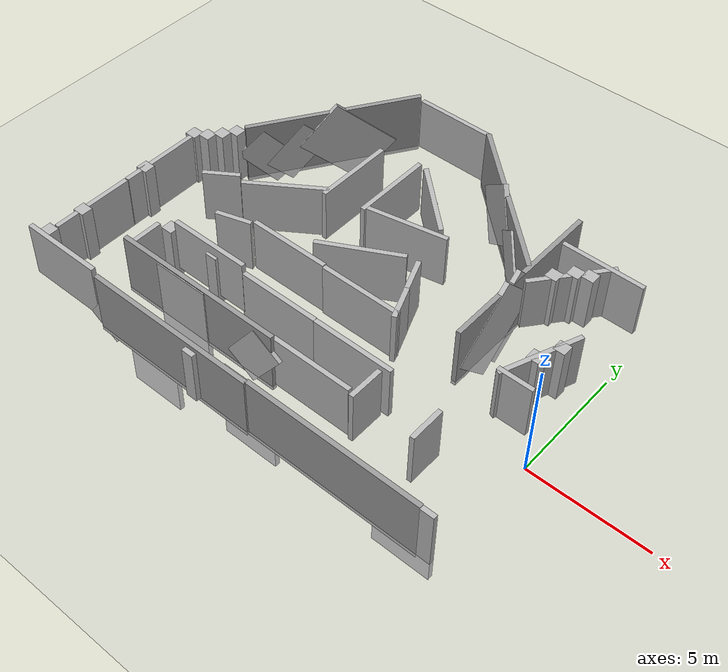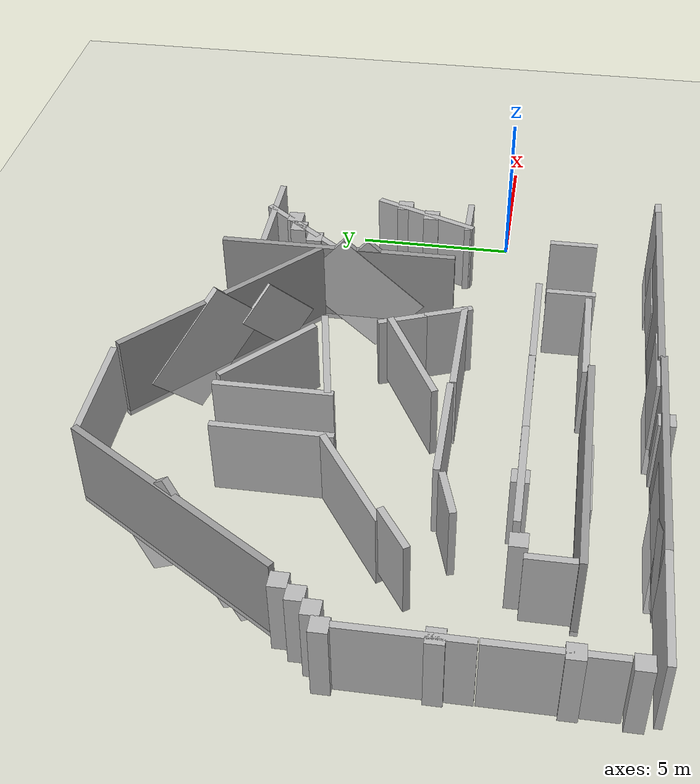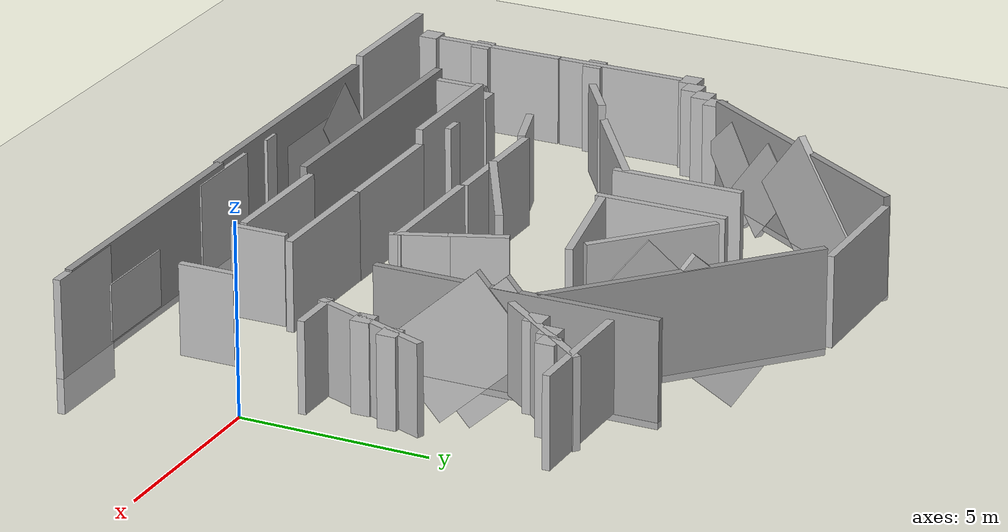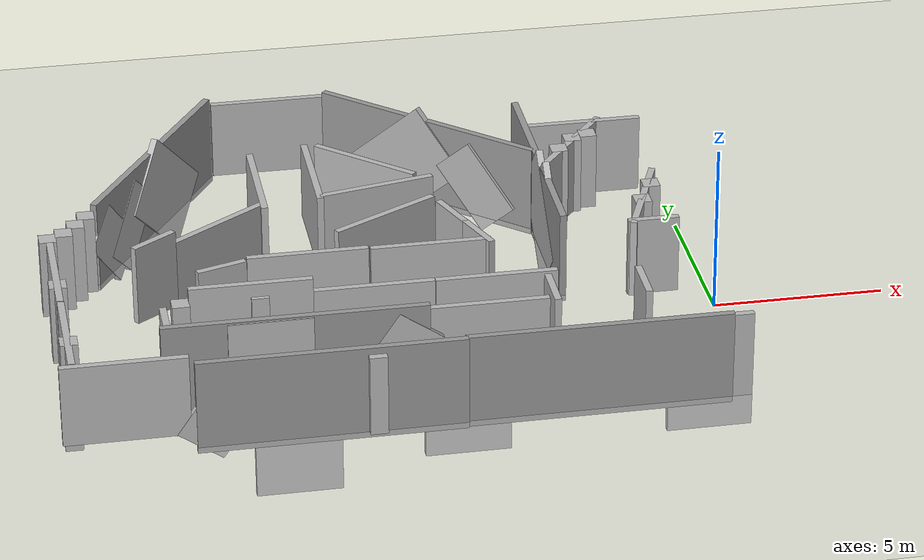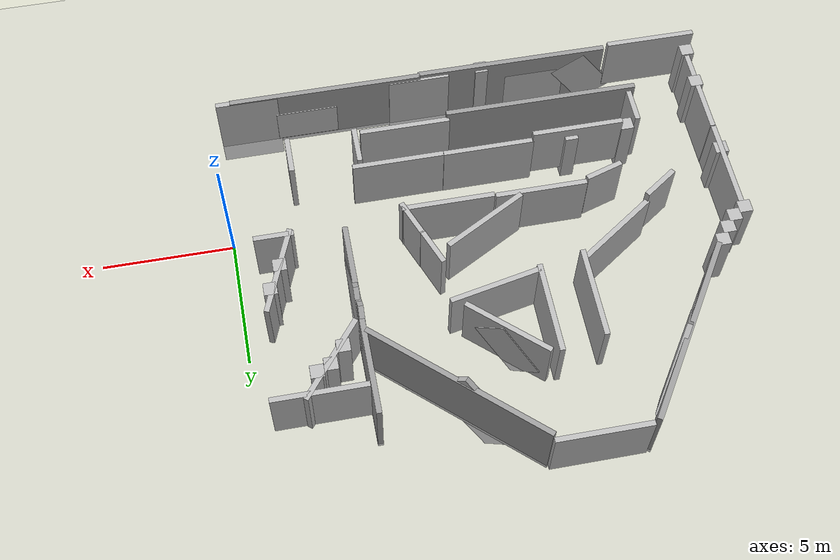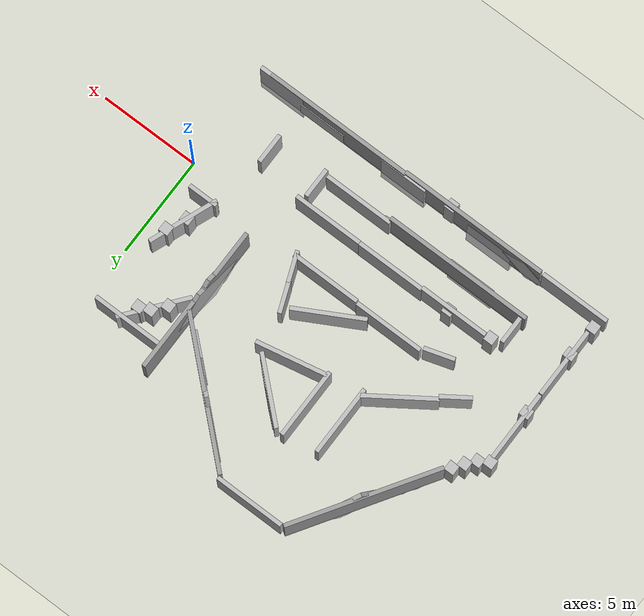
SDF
<sdf version="1.6">
 <world name="default">
  <model name="ground_plane">
   <static>1</static>
   <link name="link">
    <collision name="collision">
     <geometry><plane><normal>0 0 1</normal><size>100 100</size></plane></geometry>
     <surface><friction><ode><mu>100</mu><mu2>50</mu2></ode></friction></surface>
    </collision>
    <visual name="visual">
     <cast_shadows>0</cast_shadows>
     <geometry><plane><normal>0 0 1</normal><size>100 100</size></plane></geometry>
     <material>
      <script><uri>file://media/materials/scripts/gazebo.material</uri><name>Gazebo/Grey</name></script>
     </material>
    </visual>
   </link>
  </model>
  <model name="mywall_net10">
   <static>1</static>
   <link name="link">
    <pose>0 0 1.2 0 -0 0</pose>
    <collision name="collision"><geometry><box><size>1.5 0.2 2.4</size></box></geometry></collision>
    <visual name="visual">
     <cast_shadows>0</cast_shadows>
     <geometry><box><size>1.5 0.2 2.4</size></box></geometry>
     <material>
      <script>
       <uri>model://mywall_net10/materials/scripts</uri>
       <uri>model://mywall_net10/materials/textures</uri>
       <name>vrc/mywall_net10</name>
      </script>
     </material>
    </visual>
   </link>
   <pose>-1.56929 1.23265 0 0 -0 0</pose>
  </model>
  <model name="mywall_net1">
   <static>1</static>
   <link name="link">
    <pose>0 0 1.2 0 -0 0</pose>
    <collision name="collision"><geometry><box><size>1.5 0.2 2.4</size></box></geometry></collision>
    <visual name="visual">
     <cast_shadows>0</cast_shadows>
     <geometry><box><size>1.5 0.2 2.4</size></box></geometry>
     <material>
      <script>
       <uri>model://mywall_net1/materials/scripts</uri>
       <uri>model://mywall_net1/materials/textures</uri>
       <name>vrc/mywall_net1</name>
      </script>
     </material>
    </visual>
   </link>
   <pose>-6.68814 1.38332 0 0 0 -1.2</pose>
  </model>
  <model name="mywall_net1_clone">
   <static>1</static>
   <link name="link">
    <pose>0 0 1.2 0 -0 0</pose>
    <collision name="collision"><geometry><box><size>1.5 0.2 2.4</size></box></geometry></collision>
    <visual name="visual">
     <cast_shadows>0</cast_shadows>
     <geometry><box><size>1.5 0.2 2.4</size></box></geometry>
     <material>
      <script>
       <uri>model://mywall_net1/materials/scripts</uri>
       <uri>model://mywall_net1/materials/textures</uri>
       <name>vrc/mywall_net1</name>
      </script>
     </material>
    </visual>
   </link>
   <pose>-7.22111 2.72216 0 0 0 -1.2</pose>
  </model>
  <model name="grey_wall_clone_clone_clone">
   <static>1</static>
   <link name="link">
    <pose>0 0 1.2 0 -0 0</pose>
    <collision name="collision"><geometry><box><size>7.5 0.2 2.8</size></box></geometry></collision>
    <visual name="visual">
     <cast_shadows>0</cast_shadows>
     <geometry><box><size>7.5 0.2 2.8</size></box></geometry>
     <material>
      <script>
       <uri>model://grey_wall/materials/scripts</uri>
       <uri>model://grey_wall/materials/textures</uri>
       <name>vrc/grey_wall</name>
      </script>
     </material>
    </visual>
   </link>
   <pose>-7.01787 8.23796 0 0 0 -0.735</pose>
  </model>
  <model name="mywall_net4_1_clone_0">
   <static>1</static>
   <link name="link">
    <pose>0 0 1.2 0 -0 0</pose>
    <collision name="collision"><geometry><box><size>3.5 0.2 2.4</size></box></geometry></collision>
    <visual name="visual">
     <cast_shadows>0</cast_shadows>
     <geometry><box><size>3.5 0.2 2.4</size></box></geometry>
     <material>
      <script>
       <uri>model://mywall_net4/materials/scripts</uri>
       <uri>model://mywall_net4/materials/textures</uri>
       <name>vrc/mywall_net4</name>
      </script>
     </material>
    </visual>
   </link>
   <pose>-10.8563 5.92454 0 0 -0 1.57</pose>
  </model>
  <model name="mywall_net2_1">
   <static>1</static>
   <link name="link">
    <pose>0 0 1.2 0 -0 0</pose>
    <collision name="collision"><geometry><box><size>3.5 0.2 2.4</size></box></geometry></collision>
    <visual name="visual">
     <cast_shadows>0</cast_shadows>
     <geometry><box><size>3.5 0.2 2.4</size></box></geometry>
     <material>
      <script>
       <uri>model://mywall_net2/materials/scripts</uri>
       <uri>model://mywall_net2/materials/textures</uri>
       <name>vrc/mywall_net2</name>
      </script>
     </material>
    </visual>
   </link>
   <pose>-9.12694 4.7 0 0 -0 0.199999</pose>
  </model>
  <model name="mywall_net5">
   <static>1</static>
   <link name="link">
    <pose>0 0 1.2 0 -0 0</pose>
    <collision name="collision"><geometry><box><size>3.5 0.2 2.4</size></box></geometry></collision>
    <visual name="visual">
     <cast_shadows>0</cast_shadows>
     <geometry><box><size>3.5 0.2 2.4</size></box></geometry>
     <material>
      <script>
       <uri>model://mywall_net5/materials/scripts</uri>
       <uri>model://mywall_net5/materials/textures</uri>
       <name>vrc/mywall_net5</name>
      </script>
     </material>
    </visual>
   </link>
   <pose>-8.15323 0.912168 0 0 -0 0</pose>
  </model>
  <model name="mywall_net5_clone">
   <static>1</static>
   <link name="link">
    <pose>0 0 1.2 0 -0 0</pose>
    <collision name="collision"><geometry><box><size>3.5 0.2 2.4</size></box></geometry></collision>
    <visual name="visual">
     <cast_shadows>0</cast_shadows>
     <geometry><box><size>3.5 0.2 2.4</size></box></geometry>
     <material>
      <script>
       <uri>model://mywall_net5/materials/scripts</uri>
       <uri>model://mywall_net5/materials/textures</uri>
       <name>vrc/mywall_net5</name>
      </script>
     </material>
    </visual>
   </link>
   <pose>-6.6459 -1.25646 0 0 -0 0</pose>
  </model>
  <model name="mywall_net10_0_clone">
   <static>1</static>
   <link name="link">
    <pose>0 0 1.2 0 -0 0</pose>
    <collision name="collision"><geometry><box><size>1.5 0.2 2.4</size></box></geometry></collision>
    <visual name="visual">
     <cast_shadows>0</cast_shadows>
     <geometry><box><size>1.5 0.2 2.4</size></box></geometry>
     <material>
      <script>
       <uri>model://mywall_net10/materials/scripts</uri>
       <uri>model://mywall_net10/materials/textures</uri>
       <name>vrc/mywall_net10</name>
      </script>
     </material>
    </visual>
   </link>
   <pose>-5.22714 -2.25073 0 0 -0 1.57</pose>
  </model>
  <model name="mywall_net6_1">
   <static>1</static>
   <link name="link">
    <pose>0 0 1.2 0 -0 0</pose>
    <collision name="collision"><geometry><box><size>3.5 0.2 2.4</size></box></geometry></collision>
    <visual name="visual">
     <cast_shadows>0</cast_shadows>
     <geometry><box><size>3.5 0.2 2.4</size></box></geometry>
     <material>
      <script>
       <uri>model://mywall_net6/materials/scripts</uri>
       <uri>model://mywall_net6/materials/textures</uri>
       <name>vrc/mywall_net6</name>
      </script>
     </material>
    </visual>
   </link>
   <pose>-11.694 0.974828 0 0 -0 0</pose>
  </model>
  <model name="mywall_net6_1_clone">
   <static>1</static>
   <link name="link">
    <pose>0 0 1.2 0 -0 0</pose>
    <collision name="collision"><geometry><box><size>3.5 0.2 2.4</size></box></geometry></collision>
    <visual name="visual">
     <cast_shadows>0</cast_shadows>
     <geometry><box><size>3.5 0.2 2.4</size></box></geometry>
     <material>
      <script>
       <uri>model://mywall_net6/materials/scripts</uri>
       <uri>model://mywall_net6/materials/textures</uri>
       <name>vrc/mywall_net6</name>
      </script>
     </material>
    </visual>
   </link>
   <pose>-10.1548 -1.24656 0 0 -0 0</pose>
  </model>
  <model name="mywall_net6_1_clone_clone">
   <static>1</static>
   <link name="link">
    <pose>0 0 1.2 0 -0 0</pose>
    <collision name="collision"><geometry><box><size>3.5 0.2 2.4</size></box></geometry></collision>
    <visual name="visual">
     <cast_shadows>0</cast_shadows>
     <geometry><box><size>3.5 0.2 2.4</size></box></geometry>
     <material>
      <script>
       <uri>model://mywall_net6/materials/scripts</uri>
       <uri>model://mywall_net6/materials/textures</uri>
       <name>vrc/mywall_net6</name>
      </script>
     </material>
    </visual>
   </link>
   <pose>-13.6083 -1.25223 2.8 3.14 -0 0</pose>
  </model>
  <model name="mywall_net8_clone_clone">
   <static>1</static>
   <link name="link">
    <pose>0 0 1.2 0 -0 0</pose>
    <collision name="collision"><geometry><box><size>3.5 0.2 2.4</size></box></geometry></collision>
    <visual name="visual">
     <cast_shadows>0</cast_shadows>
     <geometry><box><size>3.5 0.2 2.4</size></box></geometry>
     <material>
      <script>
       <uri>model://mywall_net8/materials/scripts</uri>
       <uri>model://mywall_net8/materials/textures</uri>
       <name>vrc/mywall_net8</name>
      </script>
     </material>
    </visual>
   </link>
   <pose>-14 3.2 0 0 -0 0.6</pose>
  </model>
  <model name="mywall0">
   <static>1</static>
   <link name="link">
    <pose>0 0 1.2 0 -0 0</pose>
    <collision name="collision"><geometry><box><size>3.5 0.2 2.4</size></box></geometry></collision>
    <visual name="visual">
     <cast_shadows>0</cast_shadows>
     <geometry><box><size>3.5 0.2 2.4</size></box></geometry>
     <material>
      <script>
       <uri>model://mywall0/materials/scripts</uri>
       <uri>model://mywall0/materials/textures</uri>
       <name>vrc/mywall0</name>
      </script>
     </material>
    </visual>
   </link>
   <pose>-11.5252 10.8828 0 0 -0 0</pose>
  </model>
  <model name="mypillar_0">
   <static>1</static>
   <link name="link">
    <pose>0 0 1.2 0 -0 0</pose>
    <collision name="collision"><geometry><box><size>0.5 0.5 2.4</size></box></geometry></collision>
    <visual name="visual">
     <cast_shadows>0</cast_shadows>
     <geometry><box><size>0.5 0.5 2.4</size></box></geometry>
     <material>
      <script>
       <uri>model://mypillar/materials/scripts</uri>
       <uri>model://mypillar/materials/textures</uri>
       <name>vrc/mypillar</name>
      </script>
     </material>
    </visual>
   </link>
   <pose>-15.594 -1.34066 0 0 -0 0</pose>
  </model>
  <model name="mywall_net11_0_clone">
   <static>1</static>
   <link name="link">
    <pose>0 0 1.2 0 -0 0</pose>
    <collision name="collision"><geometry><box><size>1.5 0.2 2.4</size></box></geometry></collision>
    <visual name="visual">
     <cast_shadows>0</cast_shadows>
     <geometry><box><size>1.5 0.2 2.4</size></box></geometry>
     <material>
      <script>
       <uri>model://mywall_net11/materials/scripts</uri>
       <uri>model://mywall_net11/materials/textures</uri>
       <name>vrc/mywall_net11</name>
      </script>
     </material>
    </visual>
   </link>
   <pose>-16.0991 -2.23935 0 0 -0 1.57</pose>
  </model>
  <model name="mywall_net8_clone_clone_clone">
   <static>1</static>
   <link name="link">
    <pose>0 0 1.2 0 -0 0</pose>
    <collision name="collision"><geometry><box><size>3.5 0.2 2.4</size></box></geometry></collision>
    <visual name="visual">
     <cast_shadows>0</cast_shadows>
     <geometry><box><size>3.5 0.2 2.4</size></box></geometry>
     <material>
      <script>
       <uri>model://mywall_net8/materials/scripts</uri>
       <uri>model://mywall_net8/materials/textures</uri>
       <name>vrc/mywall_net8</name>
      </script>
     </material>
    </visual>
   </link>
   <pose>-9.26945 2.1763 2.8 3.14 -0 0.5</pose>
  </model>
  <model name="mywall_net11_1">
   <static>1</static>
   <link name="link">
    <pose>0 0 1.2 0 -0 0</pose>
    <collision name="collision"><geometry><box><size>1.5 0.2 2.4</size></box></geometry></collision>
    <visual name="visual">
     <cast_shadows>0</cast_shadows>
     <geometry><box><size>1.5 0.2 2.4</size></box></geometry>
     <material>
      <script>
       <uri>model://mywall_net11/materials/scripts</uri>
       <uri>model://mywall_net11/materials/textures</uri>
       <name>vrc/mywall_net11</name>
      </script>
     </material>
    </visual>
   </link>
   <pose>-14.2129 0.6 0 0 -0 0.3</pose>
  </model>
  <model name="grey_wall_0_clone">
   <static>1</static>
   <link name="link">
    <pose>0 0 1.2 0 -0 0</pose>
    <collision name="collision"><geometry><box><size>7.5 0.2 2.8</size></box></geometry></collision>
    <visual name="visual">
     <cast_shadows>0</cast_shadows>
     <geometry><box><size>7.5 0.2 2.8</size></box></geometry>
     <material>
      <script>
       <uri>model://grey_wall/materials/scripts</uri>
       <uri>model://grey_wall/materials/textures</uri>
       <name>vrc/grey_wall</name>
      </script>
     </material>
    </visual>
   </link>
   <pose>-15.4191 7.71104 0 0 -0 1</pose>
  </model>
  <model name="mywall_net4_1_clone_0_clone">
   <static>1</static>
   <link name="link">
    <pose>0 0 1.2 0 -0 0</pose>
    <collision name="collision"><geometry><box><size>3.5 0.2 2.4</size></box></geometry></collision>
    <visual name="visual">
     <cast_shadows>0</cast_shadows>
     <geometry><box><size>3.5 0.2 2.4</size></box></geometry>
     <material>
      <script>
       <uri>model://mywall_net4/materials/scripts</uri>
       <uri>model://mywall_net4/materials/textures</uri>
       <name>vrc/mywall_net4</name>
      </script>
     </material>
    </visual>
   </link>
   <pose>-12.5395 5.60797 0 0 -0 1.57</pose>
  </model>
  <model name="mywall_net7_1_clone">
   <static>1</static>
   <link name="link">
    <pose>0 0 1.2 0 -0 0</pose>
    <collision name="collision"><geometry><box><size>3.5 0.2 2.4</size></box></geometry></collision>
    <visual name="visual">
     <cast_shadows>0</cast_shadows>
     <geometry><box><size>3.5 0.2 2.4</size></box></geometry>
     <material>
      <script>
       <uri>model://mywall_net7/materials/scripts</uri>
       <uri>model://mywall_net7/materials/textures</uri>
       <name>vrc/mywall_net7</name>
      </script>
     </material>
    </visual>
   </link>
   <pose>-18.8571 1.13441 0 0 -0 1.57</pose>
  </model>
  <model name="mypillar_2">
   <static>1</static>
   <link name="link">
    <pose>0 0 1.2 0 -0 0</pose>
    <collision name="collision"><geometry><box><size>0.5 0.5 2.4</size></box></geometry></collision>
    <visual name="visual">
     <cast_shadows>0</cast_shadows>
     <geometry><box><size>0.5 0.5 2.4</size></box></geometry>
     <material>
      <script>
       <uri>model://mypillar/materials/scripts</uri>
       <uri>model://mypillar/materials/textures</uri>
       <name>vrc/mypillar</name>
      </script>
     </material>
    </visual>
   </link>
   <pose>-18.9055 3.11089 0 0 -0 0</pose>
  </model>
  <model name="mypillar_3">
   <static>1</static>
   <link name="link">
    <pose>0 0 1.2 0 -0 0</pose>
    <collision name="collision"><geometry><box><size>0.5 0.5 2.4</size></box></geometry></collision>
    <visual name="visual">
     <cast_shadows>0</cast_shadows>
     <geometry><box><size>0.5 0.5 2.4</size></box></geometry>
     <material>
      <script>
       <uri>model://mypillar/materials/scripts</uri>
       <uri>model://mypillar/materials/textures</uri>
       <name>vrc/mypillar</name>
      </script>
     </material>
    </visual>
   </link>
   <pose>-17.7063 4.33266 0 0 -0 0</pose>
  </model>
  <model name="mypillar_4">
   <static>1</static>
   <link name="link">
    <pose>0 0 1.2 0 -0 0</pose>
    <collision name="collision"><geometry><box><size>0.5 0.5 2.4</size></box></geometry></collision>
    <visual name="visual">
     <cast_shadows>0</cast_shadows>
     <geometry><box><size>0.5 0.5 2.4</size></box></geometry>
     <material>
      <script>
       <uri>model://mypillar/materials/scripts</uri>
       <uri>model://mypillar/materials/textures</uri>
       <name>vrc/mypillar</name>
      </script>
     </material>
    </visual>
   </link>
   <pose>-18.0478 3.84526 0 0 -0 0</pose>
  </model>
  <model name="mypillar_5">
   <static>1</static>
   <link name="link">
    <pose>0 0 1.2 0 -0 0</pose>
    <collision name="collision"><geometry><box><size>0.5 0.5 2.4</size></box></geometry></collision>
    <visual name="visual">
     <cast_shadows>0</cast_shadows>
     <geometry><box><size>0.5 0.5 2.4</size></box></geometry>
     <material>
      <script>
       <uri>model://mypillar/materials/scripts</uri>
       <uri>model://mypillar/materials/textures</uri>
       <name>vrc/mypillar</name>
      </script>
     </material>
    </visual>
   </link>
   <pose>-18.4243 3.39207 0 0 -0 0</pose>
  </model>
  <model name="mywall_net7_1_clone_clone">
   <static>1</static>
   <link name="link">
    <pose>0 0 1.2 0 -0 0</pose>
    <collision name="collision"><geometry><box><size>3.5 0.2 2.4</size></box></geometry></collision>
    <visual name="visual">
     <cast_shadows>0</cast_shadows>
     <geometry><box><size>3.5 0.2 2.4</size></box></geometry>
     <material>
      <script>
       <uri>model://mywall_net7/materials/scripts</uri>
       <uri>model://mywall_net7/materials/textures</uri>
       <name>vrc/mywall_net7</name>
      </script>
     </material>
    </visual>
   </link>
   <pose>-18.853 -2.40159 0 0 -0 1.57</pose>
  </model>
  <model name="mywall1">
   <static>1</static>
   <link name="link">
    <pose>0 0 1.2 0 -0 0</pose>
    <collision name="collision"><geometry><box><size>3.5 0.2 2.4</size></box></geometry></collision>
    <visual name="visual">
     <cast_shadows>0</cast_shadows>
     <geometry><box><size>3.5 0.2 2.4</size></box></geometry>
     <material>
      <script>
       <uri>model://mywall1/materials/scripts</uri>
       <uri>model://mywall1/materials/textures</uri>
       <name>vrc/mywall1</name>
      </script>
     </material>
    </visual>
   </link>
   <pose>-2.324 7.71624 0 0 -0 0</pose>
  </model>
  <model name="grey_wall_2_clone_3">
   <static>1</static>
   <link name="link">
    <pose>0 0 1.2 0 -0 0</pose>
    <collision name="collision"><geometry><box><size>7.5 0.2 2.8</size></box></geometry></collision>
    <visual name="visual">
     <cast_shadows>0</cast_shadows>
     <geometry><box><size>7.5 0.2 2.8</size></box></geometry>
     <material>
      <script>
       <uri>model://grey_wall/materials/scripts</uri>
       <uri>model://grey_wall/materials/textures</uri>
       <name>vrc/grey_wall</name>
      </script>
     </material>
    </visual>
   </link>
   <pose>-4.42445 -4.94188 0 0 -0 0</pose>
  </model>
  <model name="grey_wall_2_clone_4">
   <static>1</static>
   <link name="link">
    <pose>0 0 1.2 0 -0 0</pose>
    <collision name="collision"><geometry><box><size>7.5 0.2 2.8</size></box></geometry></collision>
    <visual name="visual">
     <cast_shadows>0</cast_shadows>
     <geometry><box><size>7.5 0.2 2.8</size></box></geometry>
     <material>
      <script>
       <uri>model://grey_wall/materials/scripts</uri>
       <uri>model://grey_wall/materials/textures</uri>
       <name>vrc/grey_wall</name>
      </script>
     </material>
    </visual>
   </link>
   <pose>-11.8717 -5.01121 0 0 -0 0</pose>
  </model>
  <model name="mywall_net7_1_clone_clone_clone_clone">
   <static>1</static>
   <link name="link">
    <pose>0 0 1.2 0 -0 0</pose>
    <collision name="collision"><geometry><box><size>3.5 0.2 2.4</size></box></geometry></collision>
    <visual name="visual">
     <cast_shadows>0</cast_shadows>
     <geometry><box><size>3.5 0.2 2.4</size></box></geometry>
     <material>
      <script>
       <uri>model://mywall_net7/materials/scripts</uri>
       <uri>model://mywall_net7/materials/textures</uri>
       <name>vrc/mywall_net7</name>
      </script>
     </material>
    </visual>
   </link>
   <pose>-17.5118 -4.9727 2.8 3.14 -0 0</pose>
  </model>
  <model name="mypillar_4_clone">
   <static>1</static>
   <link name="link">
    <pose>0 0 1.2 0 -0 0</pose>
    <collision name="collision"><geometry><box><size>0.5 0.5 2.4</size></box></geometry></collision>
    <visual name="visual">
     <cast_shadows>0</cast_shadows>
     <geometry><box><size>0.5 0.5 2.4</size></box></geometry>
     <material>
      <script>
       <uri>model://mypillar/materials/scripts</uri>
       <uri>model://mypillar/materials/textures</uri>
       <name>vrc/mypillar</name>
      </script>
     </material>
    </visual>
   </link>
   <pose>-18.9241 -4.45153 0 0 -0 0</pose>
  </model>
  <model name="grey_wall_2_clone_0_clone">
   <static>1</static>
   <link name="link">
    <pose>0 0 1.2 0 -0 0</pose>
    <collision name="collision"><geometry><box><size>7.5 0.2 2.8</size></box></geometry></collision>
    <visual name="visual">
     <cast_shadows>0</cast_shadows>
     <geometry><box><size>7.5 0.2 2.8</size></box></geometry>
     <material>
      <script>
       <uri>model://grey_wall/materials/scripts</uri>
       <uri>model://grey_wall/materials/textures</uri>
       <name>vrc/grey_wall</name>
      </script>
     </material>
    </visual>
   </link>
   <pose>-12.5864 -2.95024 0 0 -0 0</pose>
  </model>
  <model name="mywall_net6_1_clone_clone_0">
   <static>1</static>
   <link name="link">
    <pose>0 0 1.2 0 -0 0</pose>
    <collision name="collision"><geometry><box><size>3.5 0.2 2.4</size></box></geometry></collision>
    <visual name="visual">
     <cast_shadows>0</cast_shadows>
     <geometry><box><size>3.5 0.2 2.4</size></box></geometry>
     <material>
      <script>
       <uri>model://mywall_net6/materials/scripts</uri>
       <uri>model://mywall_net6/materials/textures</uri>
       <name>vrc/mywall_net6</name>
      </script>
     </material>
    </visual>
   </link>
   <pose>-7.18332 -2.79881 0 0 -0 0</pose>
  </model>
  <model name="mywall_net6_1_clone_clone_1">
   <static>1</static>
   <link name="link">
    <pose>0 0 1.2 0 -0 0</pose>
    <collision name="collision"><geometry><box><size>3.5 0.2 2.4</size></box></geometry></collision>
    <visual name="visual">
     <cast_shadows>0</cast_shadows>
     <geometry><box><size>3.5 0.2 2.4</size></box></geometry>
     <material>
      <script>
       <uri>model://mywall_net6/materials/scripts</uri>
       <uri>model://mywall_net6/materials/textures</uri>
       <name>vrc/mywall_net6</name>
      </script>
     </material>
    </visual>
   </link>
   <pose>-14.0457 -5.01069 0 0 1.57 0</pose>
  </model>
  <model name="mywall_net5_clone_clone">
   <static>1</static>
   <link name="link">
    <pose>0 0 1.2 0 -0 0</pose>
    <collision name="collision"><geometry><box><size>3.5 0.2 2.4</size></box></geometry></collision>
    <visual name="visual">
     <cast_shadows>0</cast_shadows>
     <geometry><box><size>3.5 0.2 2.4</size></box></geometry>
     <material>
      <script>
       <uri>model://mywall_net5/materials/scripts</uri>
       <uri>model://mywall_net5/materials/textures</uri>
       <name>vrc/mywall_net5</name>
      </script>
     </material>
    </visual>
   </link>
   <pose>-9.32003 -4.9 0.7 0 1.57 0</pose>
  </model>
  <model name="mywall_net3_clone_clone">
   <static>1</static>
   <link name="link">
    <pose>0 0 1.2 0 -0 0</pose>
    <collision name="collision"><geometry><box><size>3.5 0.2 2.4</size></box></geometry></collision>
    <visual name="visual">
     <cast_shadows>0</cast_shadows>
     <geometry><box><size>3.5 0.2 2.4</size></box></geometry>
     <material>
      <script>
       <uri>model://mywall_net3/materials/scripts</uri>
       <uri>model://mywall_net3/materials/textures</uri>
       <name>vrc/mywall_net3</name>
      </script>
     </material>
    </visual>
   </link>
   <pose>-2.51695 -4.94104 0.8 0 1.57 0</pose>
  </model>
  <model name="mywall_net10_0_clone_clone">
   <static>1</static>
   <link name="link">
    <pose>0 0 1.2 0 -0 0</pose>
    <collision name="collision"><geometry><box><size>1.5 0.2 2.4</size></box></geometry></collision>
    <visual name="visual">
     <cast_shadows>0</cast_shadows>
     <geometry><box><size>1.5 0.2 2.4</size></box></geometry>
     <material>
      <script>
       <uri>model://mywall_net10/materials/scripts</uri>
       <uri>model://mywall_net10/materials/textures</uri>
       <name>vrc/mywall_net10</name>
      </script>
     </material>
    </visual>
   </link>
   <pose>-2.62792 -2.24653 0 0 -0 1.57</pose>
  </model>
  <model name="mywall_net3_clone_clone_clone_0">
   <static>1</static>
   <link name="link">
    <pose>0 0 1.2 0 -0 0</pose>
    <collision name="collision"><geometry><box><size>3.5 0.2 2.4</size></box></geometry></collision>
    <visual name="visual">
     <cast_shadows>0</cast_shadows>
     <geometry><box><size>3.5 0.2 2.4</size></box></geometry>
     <material>
      <script>
       <uri>model://mywall_net3/materials/scripts</uri>
       <uri>model://mywall_net3/materials/textures</uri>
       <name>vrc/mywall_net3</name>
      </script>
     </material>
    </visual>
   </link>
   <pose>-14.4845 -3 0.8 0 1.57 0</pose>
  </model>
  <model name="mywall_net1_0">
   <static>1</static>
   <link name="link">
    <pose>0 0 1.2 0 -0 0</pose>
    <collision name="collision"><geometry><box><size>1.5 0.2 2.4</size></box></geometry></collision>
    <visual name="visual">
     <cast_shadows>0</cast_shadows>
     <geometry><box><size>1.5 0.2 2.4</size></box></geometry>
     <material>
      <script>
       <uri>model://mywall_net1/materials/scripts</uri>
       <uri>model://mywall_net1/materials/textures</uri>
       <name>vrc/mywall_net1</name>
      </script>
     </material>
    </visual>
   </link>
   <pose>-4.80261 -4.9 0.8 0 1.57 0</pose>
  </model>
  <model name="mywall_net11_1_clone">
   <static>1</static>
   <link name="link">
    <pose>0 0 1.2 0 -0 0</pose>
    <collision name="collision"><geometry><box><size>1.5 0.2 2.4</size></box></geometry></collision>
    <visual name="visual">
     <cast_shadows>0</cast_shadows>
     <geometry><box><size>1.5 0.2 2.4</size></box></geometry>
     <material>
      <script>
       <uri>model://mywall_net11/materials/scripts</uri>
       <uri>model://mywall_net11/materials/textures</uri>
       <name>vrc/mywall_net11</name>
      </script>
     </material>
    </visual>
   </link>
   <pose>-10.4259 -2.96821 0 0 0.6 0</pose>
  </model>
  <model name="mywall_net3_clone_clone_0">
   <static>1</static>
   <link name="link">
    <pose>0 0 1.2 0 -0 0</pose>
    <collision name="collision"><geometry><box><size>3.5 0.2 2.4</size></box></geometry></collision>
    <visual name="visual">
     <cast_shadows>0</cast_shadows>
     <geometry><box><size>3.5 0.2 2.4</size></box></geometry>
     <material>
      <script>
       <uri>model://mywall_net3/materials/scripts</uri>
       <uri>model://mywall_net3/materials/textures</uri>
       <name>vrc/mywall_net3</name>
      </script>
     </material>
    </visual>
   </link>
   <pose>-4.19471 5.3 -2e-06 1e-06 -0.735001 1.57</pose>
  </model>
  <model name="mypillar_3_clone">
   <static>1</static>
   <link name="link">
    <pose>0 0 1.2 0 -0 0</pose>
    <collision name="collision"><geometry><box><size>0.5 0.5 2.4</size></box></geometry></collision>
    <visual name="visual">
     <cast_shadows>0</cast_shadows>
     <geometry><box><size>0.5 0.5 2.4</size></box></geometry>
     <material>
      <script>
       <uri>model://mypillar/materials/scripts</uri>
       <uri>model://mypillar/materials/textures</uri>
       <name>vrc/mypillar</name>
      </script>
     </material>
    </visual>
   </link>
   <pose>-18.8475 0.375721 0 0 -0 0</pose>
  </model>
  <model name="mypillar_3_clone_0">
   <static>1</static>
   <link name="link">
    <pose>0 0 1.2 0 -0 0</pose>
    <collision name="collision"><geometry><box><size>0.5 0.5 2.4</size></box></geometry></collision>
    <visual name="visual">
     <cast_shadows>0</cast_shadows>
     <geometry><box><size>0.5 0.5 2.4</size></box></geometry>
     <material>
      <script>
       <uri>model://mypillar/materials/scripts</uri>
       <uri>model://mypillar/materials/textures</uri>
       <name>vrc/mypillar</name>
      </script>
     </material>
    </visual>
   </link>
   <pose>-18.8275 -2.8801 0 0 -0 0</pose>
  </model>
  <model name="mypillar_3_clone_1">
   <static>1</static>
   <link name="link">
    <pose>0 0 1.2 0 -0 0</pose>
    <collision name="collision"><geometry><box><size>0.5 0.5 2.4</size></box></geometry></collision>
    <visual name="visual">
     <cast_shadows>0</cast_shadows>
     <geometry><box><size>0.5 0.5 2.4</size></box></geometry>
     <material>
      <script>
       <uri>model://mypillar/materials/scripts</uri>
       <uri>model://mypillar/materials/textures</uri>
       <name>vrc/mypillar</name>
      </script>
     </material>
    </visual>
   </link>
   <pose>-13.3627 -1.23216 0 0 -0 0</pose>
  </model>
  <model name="mypillar_3_clone_2">
   <static>1</static>
   <link name="link">
    <pose>0 0 1.2 0 -0 0</pose>
    <collision name="collision"><geometry><box><size>0.5 0.5 2.4</size></box></geometry></collision>
    <visual name="visual">
     <cast_shadows>0</cast_shadows>
     <geometry><box><size>0.5 0.5 2.4</size></box></geometry>
     <material>
      <script>
       <uri>model://mypillar/materials/scripts</uri>
       <uri>model://mypillar/materials/textures</uri>
       <name>vrc/mypillar</name>
      </script>
     </material>
    </visual>
   </link>
   <pose>-10.6464 -5.07206 0 0 -0 0</pose>
  </model>
  <model name="mywall_net8_clone_clone_0_clone">
   <static>1</static>
   <link name="link">
    <pose>0 0 1.2 0 -0 0</pose>
    <collision name="collision"><geometry><box><size>3.5 0.2 2.4</size></box></geometry></collision>
    <visual name="visual">
     <cast_shadows>0</cast_shadows>
     <geometry><box><size>3.5 0.2 2.4</size></box></geometry>
     <material>
      <script>
       <uri>model://mywall_net8/materials/scripts</uri>
       <uri>model://mywall_net8/materials/textures</uri>
       <name>vrc/mywall_net8</name>
      </script>
     </material>
    </visual>
   </link>
   <pose>-15.477 7.5 -3e-06 0 0.735 1</pose>
  </model>
  <model name="mywall_net5_1">
   <static>1</static>
   <link name="link">
    <pose>0 0 1.2 0 -0 0</pose>
    <collision name="collision"><geometry><box><size>3.5 0.2 2.4</size></box></geometry></collision>
    <visual name="visual">
     <cast_shadows>0</cast_shadows>
     <geometry><box><size>3.5 0.2 2.4</size></box></geometry>
     <material>
      <script>
       <uri>model://mywall_net5/materials/scripts</uri>
       <uri>model://mywall_net5/materials/textures</uri>
       <name>vrc/mywall_net5</name>
      </script>
     </material>
    </visual>
   </link>
   <pose>-7.04242 8.2 -3e-06 1e-06 -0.735 -0.734999</pose>
  </model>
  <model name="mywall_net11_1_clone_0">
   <static>1</static>
   <link name="link">
    <pose>0 0 1.2 0 -0 0</pose>
    <collision name="collision"><geometry><box><size>1.5 0.2 2.4</size></box></geometry></collision>
    <visual name="visual">
     <cast_shadows>0</cast_shadows>
     <geometry><box><size>1.5 0.2 2.4</size></box></geometry>
     <material>
      <script>
       <uri>model://mywall_net11/materials/scripts</uri>
       <uri>model://mywall_net11/materials/textures</uri>
       <name>vrc/mywall_net11</name>
      </script>
     </material>
    </visual>
   </link>
   <pose>-5.13559 6.40059 -2e-06 0 -0.735001 -0.735001</pose>
  </model>
  <model name="mywall_net8_clone_clone_0_clone_0">
   <static>1</static>
   <link name="link">
    <pose>0 0 1.2 0 -0 0</pose>
    <collision name="collision"><geometry><box><size>3.5 0.2 2.4</size></box></geometry></collision>
    <visual name="visual">
     <cast_shadows>0</cast_shadows>
     <geometry><box><size>3.5 0.2 2.4</size></box></geometry>
     <material>
      <script>
       <uri>model://mywall_net8/materials/scripts</uri>
       <uri>model://mywall_net8/materials/textures</uri>
       <name>vrc/mywall_net8</name>
      </script>
     </material>
    </visual>
   </link>
   <pose>-2.90207 6.53815 0 0 -0 0.900001</pose>
  </model>
  <model name="mypillar_1_clone_0_clone_3">
   <static>1</static>
   <link name="link">
    <pose>0 0 1.2 0 -0 0</pose>
    <collision name="collision"><geometry><box><size>0.5 0.5 2.4</size></box></geometry></collision>
    <visual name="visual">
     <cast_shadows>0</cast_shadows>
     <geometry><box><size>0.5 0.5 2.4</size></box></geometry>
     <material>
      <script>
       <uri>model://mypillar/materials/scripts</uri>
       <uri>model://mypillar/materials/textures</uri>
       <name>vrc/mypillar</name>
      </script>
     </material>
    </visual>
   </link>
   <pose>-2.34977 6.9319 0 0 -0 0</pose>
  </model>
  <model name="mypillar_1_clone_0_clone_4">
   <static>1</static>
   <link name="link">
    <pose>0 0 1.2 0 -0 0</pose>
    <collision name="collision"><geometry><box><size>0.5 0.5 2.4</size></box></geometry></collision>
    <visual name="visual">
     <cast_shadows>0</cast_shadows>
     <geometry><box><size>0.5 0.5 2.4</size></box></geometry>
     <material>
      <script>
       <uri>model://mypillar/materials/scripts</uri>
       <uri>model://mypillar/materials/textures</uri>
       <name>vrc/mypillar</name>
      </script>
     </material>
    </visual>
   </link>
   <pose>-3.38467 6.10813 0 0 -0 0</pose>
  </model>
  <model name="mypillar_1_clone_0_clone_5">
   <static>1</static>
   <link name="link">
    <pose>0 0 1.2 0 -0 0</pose>
    <collision name="collision"><geometry><box><size>0.5 0.5 2.4</size></box></geometry></collision>
    <visual name="visual">
     <cast_shadows>0</cast_shadows>
     <geometry><box><size>0.5 0.5 2.4</size></box></geometry>
     <material>
      <script>
       <uri>model://mypillar/materials/scripts</uri>
       <uri>model://mypillar/materials/textures</uri>
       <name>vrc/mypillar</name>
      </script>
     </material>
    </visual>
   </link>
   <pose>-2.85926 6.72296 0 0 -0 0</pose>
  </model>
  <model name="mywall_net11_0">
   <static>1</static>
   <link name="link">
    <pose>0 0 1.2 0 -0 0</pose>
    <collision name="collision"><geometry><box><size>1.5 0.2 2.4</size></box></geometry></collision>
    <visual name="visual">
     <cast_shadows>0</cast_shadows>
     <geometry><box><size>1.5 0.2 2.4</size></box></geometry>
     <material>
      <script>
       <uri>model://mywall_net11/materials/scripts</uri>
       <uri>model://mywall_net11/materials/textures</uri>
       <name>vrc/mywall_net11</name>
      </script>
     </material>
    </visual>
   </link>
   <pose>-16.6873 5.6967 -3e-06 0 0.735 1</pose>
  </model>
  <model name="mywall_net1_1_clone">
   <static>1</static>
   <link name="link">
    <pose>0 0 1.2 0 -0 0</pose>
    <collision name="collision"><geometry><box><size>1.5 0.2 2.4</size></box></geometry></collision>
    <visual name="visual">
     <cast_shadows>0</cast_shadows>
     <geometry><box><size>1.5 0.2 2.4</size></box></geometry>
     <material>
      <script>
       <uri>model://mywall_net1/materials/scripts</uri>
       <uri>model://mywall_net1/materials/textures</uri>
       <name>vrc/mywall_net1</name>
      </script>
     </material>
    </visual>
   </link>
   <pose>-16.462 6.06613 -3e-06 0 -0.735 1</pose>
  </model>
  <model name="mywall_net11_1_clone_clone">
   <static>1</static>
   <link name="link">
    <pose>0 0 1.2 0 -0 0</pose>
    <collision name="collision"><geometry><box><size>1.5 0.2 2.4</size></box></geometry></collision>
    <visual name="visual">
     <cast_shadows>0</cast_shadows>
     <geometry><box><size>1.5 0.2 2.4</size></box></geometry>
     <material>
      <script>
       <uri>model://mywall_net11/materials/scripts</uri>
       <uri>model://mywall_net11/materials/textures</uri>
       <name>vrc/mywall_net11</name>
      </script>
     </material>
    </visual>
   </link>
   <pose>-15.5352 -5 0 0 0.6 0</pose>
  </model>
  <model name="grey_wall_clone_clone">
   <static>1</static>
   <link name="link">
    <pose>0 0 1.2 0 -0 0</pose>
    <collision name="collision"><geometry><box><size>7.5 0.2 2.8</size></box></geometry></collision>
    <visual name="visual">
     <cast_shadows>0</cast_shadows>
     <geometry><box><size>7.5 0.2 2.8</size></box></geometry>
     <material>
      <script>
       <uri>model://grey_wall/materials/scripts</uri>
       <uri>model://grey_wall/materials/textures</uri>
       <name>vrc/grey_wall</name>
      </script>
     </material>
    </visual>
   </link>
   <pose>-4.17964 5.2 0 0 -0 1.57</pose>
  </model>
  <model name="mywall_net3_clone_clone_0_clone">
   <static>1</static>
   <link name="link">
    <pose>0 0 1.2 0 -0 0</pose>
    <collision name="collision"><geometry><box><size>3.5 0.2 2.4</size></box></geometry></collision>
    <visual name="visual">
     <cast_shadows>0</cast_shadows>
     <geometry><box><size>3.5 0.2 2.4</size></box></geometry>
     <material>
      <script>
       <uri>model://mywall_net3/materials/scripts</uri>
       <uri>model://mywall_net3/materials/textures</uri>
       <name>vrc/mywall_net3</name>
      </script>
     </material>
    </visual>
   </link>
   <pose>-4.15409 4.52426 -2e-06 1e-06 -0.735001 1.57</pose>
  </model>
  <model name="mywall_net4_1_clone_0_clone_0">
   <static>1</static>
   <link name="link">
    <pose>0 0 1.2 0 -0 0</pose>
    <collision name="collision"><geometry><box><size>3.5 0.2 2.4</size></box></geometry></collision>
    <visual name="visual">
     <cast_shadows>0</cast_shadows>
     <geometry><box><size>3.5 0.2 2.4</size></box></geometry>
     <material>
      <script>
       <uri>model://mywall_net4/materials/scripts</uri>
       <uri>model://mywall_net4/materials/textures</uri>
       <name>vrc/mywall_net4</name>
      </script>
     </material>
    </visual>
   </link>
   <pose>-9.2 6.42214 0 0 0 -0.734999</pose>
  </model>
  <model name="mywall_net10_clone_clone_clone_clone">
   <static>1</static>
   <link name="link">
    <pose>0 0 1.2 0 -0 0</pose>
    <collision name="collision"><geometry><box><size>1.5 0.2 2.4</size></box></geometry></collision>
    <visual name="visual">
     <cast_shadows>0</cast_shadows>
     <geometry><box><size>1.5 0.2 2.4</size></box></geometry>
     <material>
      <script>
       <uri>model://mywall_net10/materials/scripts</uri>
       <uri>model://mywall_net10/materials/textures</uri>
       <name>vrc/mywall_net10</name>
      </script>
     </material>
    </visual>
   </link>
   <pose>-9.85977 7.07177 -3e-06 0 0.735 -0.735</pose>
  </model>
  <model name="mywall_net11_0_clone_clone_clone_clone_0">
   <static>1</static>
   <link name="link">
    <pose>0 0 1.2 0 -0 0</pose>
    <collision name="collision"><geometry><box><size>1.5 0.2 2.4</size></box></geometry></collision>
    <visual name="visual">
     <cast_shadows>0</cast_shadows>
     <geometry><box><size>1.5 0.2 2.4</size></box></geometry>
     <material>
      <script>
       <uri>model://mywall_net11/materials/scripts</uri>
       <uri>model://mywall_net11/materials/textures</uri>
       <name>vrc/mywall_net11</name>
      </script>
     </material>
    </visual>
   </link>
   <pose>-15.9928 1.76825 2.8 3.14 -2e-06 0.6</pose>
  </model>
  <model name="mywall_net8_clone_clone_0_clone_1">
   <static>1</static>
   <link name="link">
    <pose>0 0 1.2 0 -0 0</pose>
    <collision name="collision"><geometry><box><size>3.5 0.2 2.4</size></box></geometry></collision>
    <visual name="visual">
     <cast_shadows>0</cast_shadows>
     <geometry><box><size>3.5 0.2 2.4</size></box></geometry>
     <material>
      <script>
       <uri>model://mywall_net8/materials/scripts</uri>
       <uri>model://mywall_net8/materials/textures</uri>
       <name>vrc/mywall_net8</name>
      </script>
     </material>
    </visual>
   </link>
   <pose>-1.5595 2.67964 0 0 -0 1.2</pose>
  </model>
  <model name="mypillar_11">
   <static>1</static>
   <link name="link">
    <pose>0 0 1.2 0 -0 0</pose>
    <collision name="collision"><geometry><box><size>0.5 0.5 2.4</size></box></geometry></collision>
    <visual name="visual">
     <cast_shadows>0</cast_shadows>
     <geometry><box><size>0.5 0.5 2.4</size></box></geometry>
     <material>
      <script>
       <uri>model://mypillar/materials/scripts</uri>
       <uri>model://mypillar/materials/textures</uri>
       <name>vrc/mypillar</name>
      </script>
     </material>
    </visual>
   </link>
   <pose>-1.62783 2.48651 0 0 -0 0</pose>
  </model>
  <model name="mypillar_12">
   <static>1</static>
   <link name="link">
    <pose>0 0 1.2 0 -0 0</pose>
    <collision name="collision"><geometry><box><size>0.5 0.5 2.4</size></box></geometry></collision>
    <visual name="visual">
     <cast_shadows>0</cast_shadows>
     <geometry><box><size>0.5 0.5 2.4</size></box></geometry>
     <material>
      <script>
       <uri>model://mypillar/materials/scripts</uri>
       <uri>model://mypillar/materials/textures</uri>
       <name>vrc/mypillar</name>
      </script>
     </material>
    </visual>
   </link>
   <pose>-1.17655 3.41033 0 0 -0 0</pose>
  </model>
 </world>
</sdf>
